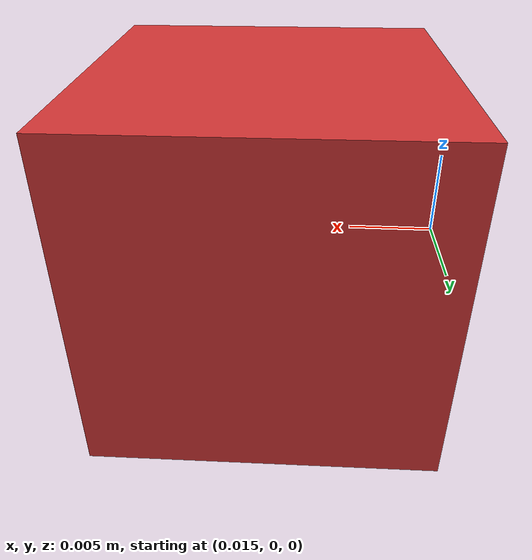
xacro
<?xml version="1.0" encoding="utf-8"?>
<robot xmlns:xacro="http://ros.org/wiki/xacro">
  <link name="arm_gripper_base">
    <inertial>
      <mass value="0.1" />
      <inertia ixx="0.0001" ixy="0" ixz="0" iyy="0.0001" iyz="0" izz="0.0001" />
    </inertial>
    <visual>
      <origin xyz="0.025 0 0" rpy="0 0 0" />
      <geometry>
        <box size="0.02 0.02 0.02" />
      </geometry>
      <material name=""><color rgba="0.8 0.2 0.2 1" /></material> </visual>
  </link>
</robot>
